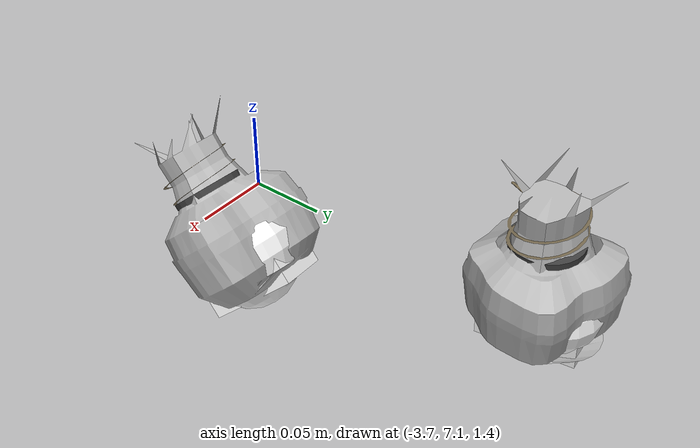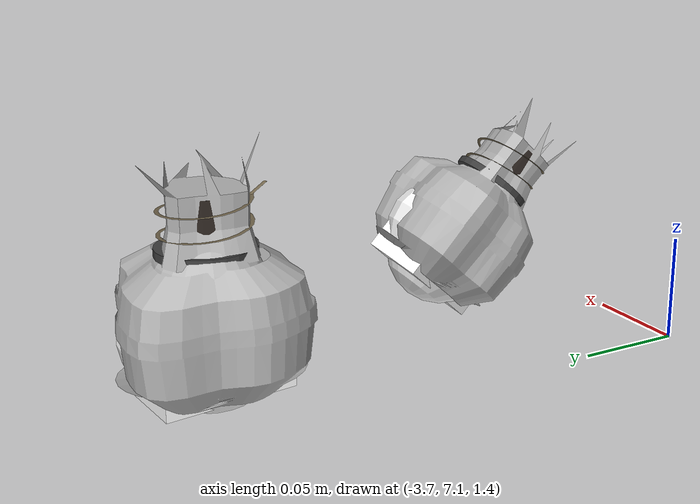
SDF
<sdf version="1.11">
 <world name="peach_orchard">
  <model name="ground">
   <static>true</static>
   <link name="link">
    <visual name="soil">
     <geometry><plane><normal>0 0 1</normal><size>32 22</size></plane></geometry>
     <material>
      <ambient>1 1 1 1</ambient>
      <diffuse>1 1 1 1</diffuse>
      <specular>0.1 0.1 0.1 1</specular>
      <pbr>
       <metal>
        <albedo_map>textures/soil_albedo.png</albedo_map>
        <normal_map type="tangent">textures/soil_normal.png</normal_map>
        <roughness>0.95</roughness>
        <metalness>0</metalness>
       </metal>
      </pbr>
     </material>
    </visual>
    <collision name="c_soil">
     <geometry><plane><normal>0 0 1</normal><size>32 22</size></plane></geometry>
    </collision>
   </link>
  </model>
  <model name="peach_tree_r1_t6_04">
   <pose>-3.60989 7.19176 1.41639 0 0.735266 -1.62757</pose>
   <static>true</static>
   <link name="bag">
    <visual name="bag_mesh">
     <pose>0 0 0.0451236 0 0 -0</pose>
     <geometry>
      <mesh><uri>model://peach_sim/meshes/bagged_peach.glb</uri><scale>0.935053 1.13154 1.02554</scale></mesh>
     </geometry>
    </visual>
    <visual name="body">
     <pose>0 0 0.0271236 0 0 0</pose>
     <geometry><ellipsoid><radii>0.0350645 0.0294201 0.0292935</radii></ellipsoid></geometry>
     <material>
      <ambient>1 1 1 1</ambient>
      <diffuse>1 1 1 1</diffuse>
      <specular>0.1 0.1 0.1 1</specular>
      <pbr>
       <metal>
        <albedo_map>textures/paper_bag_albedo.png</albedo_map>
        <normal_map type="tangent">textures/paper_bag_normal.png</normal_map>
        <roughness>0.72</roughness>
        <metalness>0</metalness>
       </metal>
      </pbr>
     </material>
    </visual>
    <visual name="bottom_fold">
     <pose>0 0 0.012 0 0 0.35</pose>
     <geometry><box><size>0.0543499 0.0338331 0.022</size></box></geometry>
     <material>
      <ambient>1 1 1 1</ambient>
      <diffuse>1 1 1 1</diffuse>
      <specular>0.1 0.1 0.1 1</specular>
      <pbr>
       <metal>
        <albedo_map>textures/paper_bag_albedo.png</albedo_map>
        <normal_map type="tangent">textures/paper_bag_normal.png</normal_map>
        <roughness>0.8</roughness>
        <metalness>0</metalness>
       </metal>
      </pbr>
     </material>
    </visual>
    <visual name="fruit">
     <pose>0 0 0.0207292 0 0 0</pose>
     <geometry><sphere><radius>0.0277984</radius></sphere></geometry>
     <material>
      <ambient>1 1 1 1</ambient>
      <diffuse>1 1 1 1</diffuse>
      <specular>0.1 0.1 0.1 1</specular>
      <pbr>
       <metal>
        <albedo_map>textures/fruit_skin_albedo.png</albedo_map>
        <normal_map type="tangent">textures/fruit_skin_normal.png</normal_map>
        <roughness>0.55</roughness>
        <metalness>0</metalness>
       </metal>
      </pbr>
     </material>
    </visual>
    <visual name="neck">
     <pose>0 0 0.0632472 0 0 0</pose>
     <geometry><cylinder><radius>0.013</radius><length>0.018</length></cylinder></geometry>
     <material>
      <ambient>1 1 1 1</ambient>
      <diffuse>1 1 1 1</diffuse>
      <specular>0.1 0.1 0.1 1</specular>
      <pbr>
       <metal>
        <albedo_map>textures/paper_bag_albedo.png</albedo_map>
        <normal_map type="tangent">textures/paper_bag_normal.png</normal_map>
        <roughness>0.75</roughness>
        <metalness>0</metalness>
       </metal>
      </pbr>
     </material>
    </visual>
    <visual name="gather">
     <pose>0 0 0.0442472 0 0 0</pose>
     <geometry><cylinder><radius>0.019</radius><length>0.02</length></cylinder></geometry>
     <material>
      <ambient>1 1 1 1</ambient>
      <diffuse>1 1 1 1</diffuse>
      <specular>0.1 0.1 0.1 1</specular>
      <pbr>
       <metal>
        <albedo_map>textures/paper_bag_albedo.png</albedo_map>
        <normal_map type="tangent">textures/paper_bag_normal.png</normal_map>
        <roughness>0.8</roughness>
        <metalness>0</metalness>
       </metal>
      </pbr>
     </material>
    </visual>
    <visual name="inner_paper">
     <pose>0 0 0.0682472 0 0 0</pose>
     <geometry><cylinder><radius>0.01</radius><length>0.008</length></cylinder></geometry>
     <material>
      <ambient>0.180392 0.14902 0.133333 1</ambient>
      <diffuse>0.180392 0.14902 0.133333 1</diffuse>
      <specular>0.1 0.1 0.1 1</specular>
     </material>
    </visual>
    <visual name="wire_0">
     <pose>0 0 0.0582472 0 0 0</pose>
     <geometry><cylinder><radius>0.0205</radius><length>0.0035</length></cylinder></geometry>
     <material>
      <ambient>0.25 0.25 0.25 1</ambient>
      <diffuse>0.25 0.25 0.25 1</diffuse>
      <specular>0.1 0.1 0.1 1</specular>
     </material>
    </visual>
    <visual name="wire_1">
     <pose>0 0 0.0652472 0 0 0</pose>
     <geometry><cylinder><radius>0.0205</radius><length>0.0035</length></cylinder></geometry>
     <material>
      <ambient>0.25 0.25 0.25 1</ambient>
      <diffuse>0.25 0.25 0.25 1</diffuse>
      <specular>0.1 0.1 0.1 1</specular>
     </material>
    </visual>
    <visual name="wire_tail">
     <pose>0.01 0 0.0662472 0 0.521618 0</pose>
     <geometry><cylinder><radius>0.0012</radius><length>0.026</length></cylinder></geometry>
     <material>
      <ambient>0.25 0.25 0.25 1</ambient>
      <diffuse>0.25 0.25 0.25 1</diffuse>
      <specular>0.1 0.1 0.1 1</specular>
     </material>
    </visual>
    <collision name="c_body">
     <pose>0 0 0.0271236 0 0 0</pose>
     <geometry><cylinder><radius>0.0350645</radius><length>0.0542472</length></cylinder></geometry>
    </collision>
   </link>
  </model>
  <model name="peach_tree_r1_t6_05">
   <pose>-3.67656 7.32366 1.4124 0 0.00232579 -1.78386</pose>
   <static>true</static>
   <link name="bag">
    <visual name="bag_mesh">
     <pose>0 0 0.0428056 0 0 -0</pose>
     <geometry>
      <mesh><uri>model://peach_sim/meshes/bagged_peach.glb</uri><scale>0.981466 1.16597 0.972856</scale></mesh>
     </geometry>
    </visual>
    <visual name="body">
     <pose>0 0 0.0248056 0 0 0</pose>
     <geometry><ellipsoid><radii>0.036805 0.0303153 0.0267901</radii></ellipsoid></geometry>
     <material>
      <ambient>1 1 1 1</ambient>
      <diffuse>1 1 1 1</diffuse>
      <specular>0.1 0.1 0.1 1</specular>
      <pbr>
       <metal>
        <albedo_map>textures/paper_bag_albedo.png</albedo_map>
        <normal_map type="tangent">textures/paper_bag_normal.png</normal_map>
        <roughness>0.72</roughness>
        <metalness>0</metalness>
       </metal>
      </pbr>
     </material>
    </visual>
    <visual name="bottom_fold">
     <pose>0 0 0.012 0 0 0.35</pose>
     <geometry><box><size>0.0570477 0.0348627 0.022</size></box></geometry>
     <material>
      <ambient>1 1 1 1</ambient>
      <diffuse>1 1 1 1</diffuse>
      <specular>0.1 0.1 0.1 1</specular>
      <pbr>
       <metal>
        <albedo_map>textures/paper_bag_albedo.png</albedo_map>
        <normal_map type="tangent">textures/paper_bag_normal.png</normal_map>
        <roughness>0.8</roughness>
        <metalness>0</metalness>
       </metal>
      </pbr>
     </material>
    </visual>
    <visual name="fruit">
     <pose>0 0 0.0218346 0 0 0</pose>
     <geometry><sphere><radius>0.028948</radius></sphere></geometry>
     <material>
      <ambient>1 1 1 1</ambient>
      <diffuse>1 1 1 1</diffuse>
      <specular>0.1 0.1 0.1 1</specular>
      <pbr>
       <metal>
        <albedo_map>textures/fruit_skin_albedo.png</albedo_map>
        <normal_map type="tangent">textures/fruit_skin_normal.png</normal_map>
        <roughness>0.55</roughness>
        <metalness>0</metalness>
       </metal>
      </pbr>
     </material>
    </visual>
    <visual name="neck">
     <pose>0 0 0.0586113 0 0 0</pose>
     <geometry><cylinder><radius>0.013</radius><length>0.018</length></cylinder></geometry>
     <material>
      <ambient>1 1 1 1</ambient>
      <diffuse>1 1 1 1</diffuse>
      <specular>0.1 0.1 0.1 1</specular>
      <pbr>
       <metal>
        <albedo_map>textures/paper_bag_albedo.png</albedo_map>
        <normal_map type="tangent">textures/paper_bag_normal.png</normal_map>
        <roughness>0.75</roughness>
        <metalness>0</metalness>
       </metal>
      </pbr>
     </material>
    </visual>
    <visual name="gather">
     <pose>0 0 0.0396113 0 0 0</pose>
     <geometry><cylinder><radius>0.019</radius><length>0.02</length></cylinder></geometry>
     <material>
      <ambient>1 1 1 1</ambient>
      <diffuse>1 1 1 1</diffuse>
      <specular>0.1 0.1 0.1 1</specular>
      <pbr>
       <metal>
        <albedo_map>textures/paper_bag_albedo.png</albedo_map>
        <normal_map type="tangent">textures/paper_bag_normal.png</normal_map>
        <roughness>0.8</roughness>
        <metalness>0</metalness>
       </metal>
      </pbr>
     </material>
    </visual>
    <visual name="inner_paper">
     <pose>0 0 0.0636113 0 0 0</pose>
     <geometry><cylinder><radius>0.01</radius><length>0.008</length></cylinder></geometry>
     <material>
      <ambient>0.180392 0.14902 0.133333 1</ambient>
      <diffuse>0.180392 0.14902 0.133333 1</diffuse>
      <specular>0.1 0.1 0.1 1</specular>
     </material>
    </visual>
    <visual name="wire_0">
     <pose>0 0 0.0536113 0 0 0</pose>
     <geometry><cylinder><radius>0.0205</radius><length>0.0035</length></cylinder></geometry>
     <material>
      <ambient>0.25 0.25 0.25 1</ambient>
      <diffuse>0.25 0.25 0.25 1</diffuse>
      <specular>0.1 0.1 0.1 1</specular>
     </material>
    </visual>
    <visual name="wire_1">
     <pose>0 0 0.0606113 0 0 0</pose>
     <geometry><cylinder><radius>0.0205</radius><length>0.0035</length></cylinder></geometry>
     <material>
      <ambient>0.25 0.25 0.25 1</ambient>
      <diffuse>0.25 0.25 0.25 1</diffuse>
      <specular>0.1 0.1 0.1 1</specular>
     </material>
    </visual>
    <visual name="wire_tail">
     <pose>0.01 0 0.0616113 0 0.521618 0</pose>
     <geometry><cylinder><radius>0.0012</radius><length>0.026</length></cylinder></geometry>
     <material>
      <ambient>0.25 0.25 0.25 1</ambient>
      <diffuse>0.25 0.25 0.25 1</diffuse>
      <specular>0.1 0.1 0.1 1</specular>
     </material>
    </visual>
    <collision name="c_body">
     <pose>0 0 0.0248056 0 0 0</pose>
     <geometry><cylinder><radius>0.036805</radius><length>0.0496113</length></cylinder></geometry>
    </collision>
   </link>
  </model>
 </world>
</sdf>
